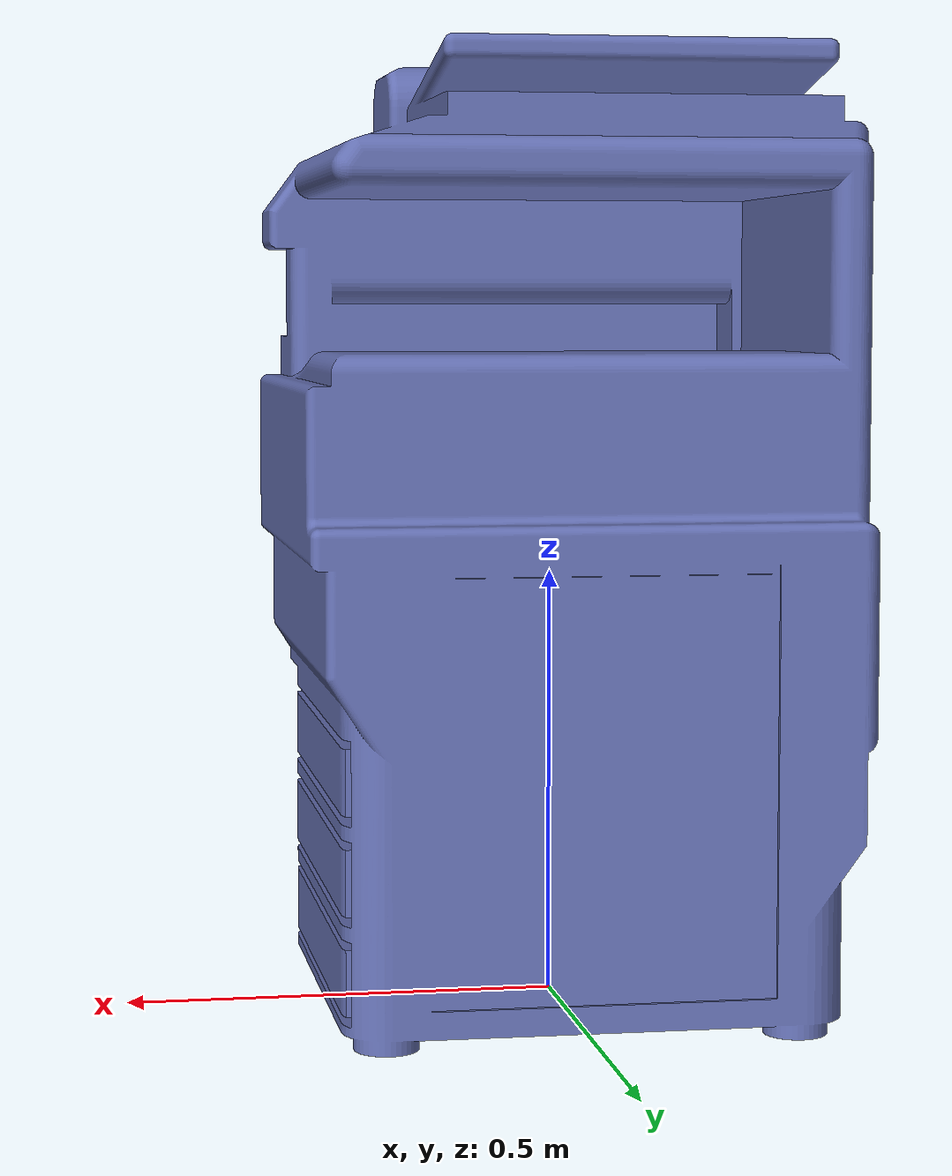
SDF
<?xml version='1.0' ?>
<sdf version='1.6'>
  <model name='photocopier'>
    <static>false</static>
    <link name='link'>
      <collision name='collision'>
        <geometry>
          <mesh>
            <uri>model://volta_simulation/models/photocopier/meshes/photocopier.dae</uri>
          </mesh>
        </geometry>
        <surface>
          <friction>
            <ode>
              <mu>100</mu>
              <mu2>50</mu2>
            </ode>
          </friction>
        </surface>
      </collision>
      <visual name='visual'>
        <geometry>
          <mesh>
            <uri>model://volta_simulation/models/photocopier/meshes/photocopier.dae</uri>
          </mesh>
        </geometry>
        <material>
        	  <script>
        	    <uri>model://volta_simulation/models/photocopier/materials/scripts</uri>
        	    <uri>model://volta_simulation/models/photocopier/materials/textures</uri>
        	    <name>photocopier</name>
        	  </script>
        </material>
      </visual>
      <inertial>
        <pose>-0.01423 0.0076 0.48843 0 0 0</pose>
        <mass>30</mass>
        <inertia>
          <ixx>6.4610511803 </ixx>
          <iyy>6.5868357872 </iyy>
          <izz>1.70465113158</izz>
          <ixy>-0.00784812122</ixy>
          <ixz>-0.30363670069 </ixz>
          <iyz>-0.0689382429</iyz>
        </inertia>
      </inertial>
    </link>
  </model>
</sdf>
